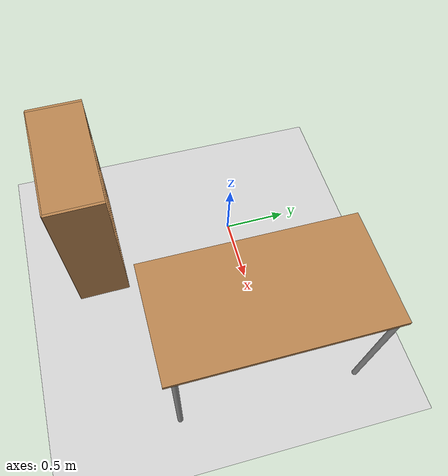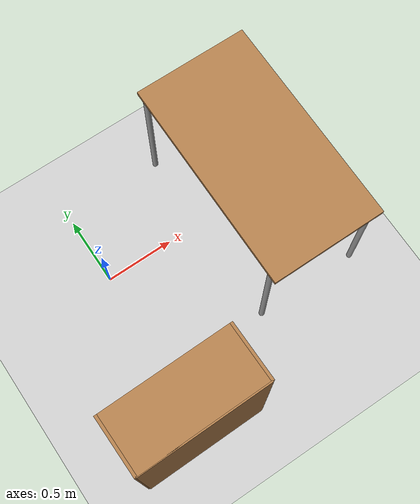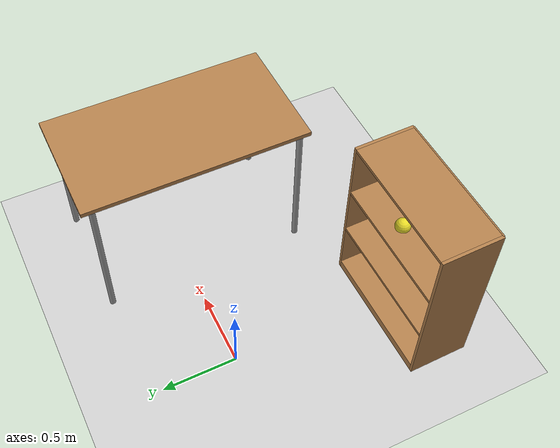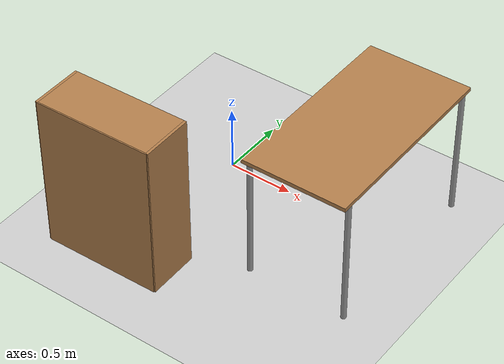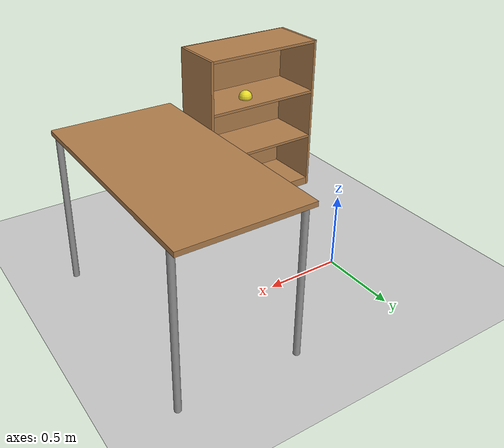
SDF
<sdf version="1.6">
 <world name="default">
  <light name="sun" type="directional">
   <pose>0 0 10 0 -0 0</pose>
   <diffuse>0.8 0.8 0.8 1</diffuse>
   <specular>0.2 0.2 0.2 1</specular>
   <attenuation>
    <range>1000</range>
    <constant>0.9</constant>
    <linear>0.01</linear>
    <quadratic>0.001</quadratic>
   </attenuation>
   <direction>-0.5 0.1 -0.9</direction>
  </light>
  <physics name="dart_1ms" default="1" type="dart">
   <max_step_size>0.001</max_step_size>
   <real_time_factor>1</real_time_factor>
   <real_time_update_rate>1000</real_time_update_rate>
  </physics>
  <physics name="dart_2ms" default="1" type="dart">
   <max_step_size>0.002</max_step_size>
   <real_time_factor>1</real_time_factor>
   <real_time_update_rate>500</real_time_update_rate>
  </physics>
  <physics name="dart_3ms" default="0" type="dart">
   <max_step_size>0.003</max_step_size>
   <real_time_factor>1</real_time_factor>
   <real_time_update_rate>333</real_time_update_rate>
  </physics>
  <model name="ground_plane">
   <static>1</static>
   <link name="link">
    <collision name="collision">
     <geometry><plane><normal>0 0 1</normal><size>100 100</size></plane></geometry>
     <surface><friction><ode><mu>100</mu><mu2>50</mu2></ode></friction></surface>
    </collision>
    <visual name="visual">
     <cast_shadows>0</cast_shadows>
     <geometry><plane><normal>0 0 1</normal><size>100 100</size></plane></geometry>
     <material>
      <script><uri>file://media/materials/scripts/gazebo.material</uri><name>Gazebo/Grey</name></script>
     </material>
    </visual>
   </link>
  </model>
  <scene><ambient>0.4 0.4 0.4 1</ambient><background>0.7 0.7 0.7 1</background><shadows>1</shadows></scene>
  <audio><device>default</device></audio>
  <spherical_coordinates>
   <surface_model>EARTH_WGS84</surface_model>
   <latitude_deg>0</latitude_deg>
   <longitude_deg>0</longitude_deg>
   <elevation>0</elevation>
   <heading_deg>0</heading_deg>
  </spherical_coordinates>
  <model name="table">
   <static>1</static>
   <link name="link">
    <collision name="surface">
     <pose>0 0 1 0 -0 0</pose>
     <geometry><box><size>1.5 0.8 0.03</size></box></geometry>
     <surface><friction><ode><mu>0.6</mu><mu2>0.6</mu2></ode></friction></surface>
    </collision>
    <visual name="visual1">
     <pose>0 0 1 0 -0 0</pose>
     <geometry><box><size>1.5 0.8 0.03</size></box></geometry>
     <material>
      <script><uri>file://media/materials/scripts/gazebo.material</uri><name>Gazebo/Wood</name></script>
     </material>
    </visual>
    <collision name="front_left_leg">
     <pose>0.68 0.38 0.5 0 -0 0</pose>
     <geometry><cylinder><radius>0.02</radius><length>1</length></cylinder></geometry>
    </collision>
    <visual name="front_left_leg">
     <pose>0.68 0.38 0.5 0 -0 0</pose>
     <geometry><cylinder><radius>0.02</radius><length>1</length></cylinder></geometry>
     <material>
      <script><uri>file://media/materials/scripts/gazebo.material</uri><name>Gazebo/Grey</name></script>
     </material>
    </visual>
    <collision name="front_right_leg">
     <pose>0.68 -0.38 0.5 0 -0 0</pose>
     <geometry><cylinder><radius>0.02</radius><length>1</length></cylinder></geometry>
    </collision>
    <visual name="front_right_leg">
     <pose>0.68 -0.38 0.5 0 -0 0</pose>
     <geometry><cylinder><radius>0.02</radius><length>1</length></cylinder></geometry>
     <material>
      <script><uri>file://media/materials/scripts/gazebo.material</uri><name>Gazebo/Grey</name></script>
     </material>
    </visual>
    <collision name="back_right_leg">
     <pose>-0.68 -0.38 0.5 0 -0 0</pose>
     <geometry><cylinder><radius>0.02</radius><length>1</length></cylinder></geometry>
    </collision>
    <visual name="back_right_leg">
     <pose>-0.68 -0.38 0.5 0 -0 0</pose>
     <geometry><cylinder><radius>0.02</radius><length>1</length></cylinder></geometry>
     <material>
      <script><uri>file://media/materials/scripts/gazebo.material</uri><name>Gazebo/Grey</name></script>
     </material>
    </visual>
    <collision name="back_left_leg">
     <pose>-0.68 0.38 0.5 0 -0 0</pose>
     <geometry><cylinder><radius>0.02</radius><length>1</length></cylinder></geometry>
    </collision>
    <visual name="back_left_leg">
     <pose>-0.68 0.38 0.5 0 -0 0</pose>
     <geometry><cylinder><radius>0.02</radius><length>1</length></cylinder></geometry>
     <material>
      <script><uri>file://media/materials/scripts/gazebo.material</uri><name>Gazebo/Grey</name></script>
     </material>
    </visual>
   </link>
   <pose>1.12467 -0.11736 0 0 -0 1.5708</pose>
  </model>
  <gravity>0 0 -9.8</gravity>
  <magnetic_field>6e-06 2.3e-05 -4.2e-05</magnetic_field>
  <atmosphere type="adiabatic"/>
  <model name="bookshelf">
   <static>1</static>
   <link name="link">
    <inertial><mass>1</mass></inertial>
    <collision name="back">
     <pose>0 0.005 0.6 0 -0 0</pose>
     <geometry><box><size>0.9 0.01 1.2</size></box></geometry>
    </collision>
    <visual name="visual1">
     <pose>0 0.005 0.6 0 -0 0</pose>
     <geometry><box><size>0.9 0.01 1.2</size></box></geometry>
     <material>
      <script><uri>file://media/materials/scripts/gazebo.material</uri><name>Gazebo/Wood</name></script>
     </material>
    </visual>
    <collision name="left_side">
     <pose>0.45 -0.195 0.6 0 -0 0</pose>
     <geometry><box><size>0.02 0.4 1.2</size></box></geometry>
    </collision>
    <visual name="visual2">
     <pose>0.45 -0.195 0.6 0 -0 0</pose>
     <geometry><box><size>0.02 0.4 1.2</size></box></geometry>
     <material>
      <script><uri>file://media/materials/scripts/gazebo.material</uri><name>Gazebo/Wood</name></script>
     </material>
    </visual>
    <collision name="right_side">
     <pose>-0.45 -0.195 0.6 0 -0 0</pose>
     <geometry><box><size>0.02 0.4 1.2</size></box></geometry>
    </collision>
    <visual name="visual3">
     <pose>-0.45 -0.195 0.6 0 -0 0</pose>
     <geometry><box><size>0.02 0.4 1.2</size></box></geometry>
     <material>
      <script><uri>file://media/materials/scripts/gazebo.material</uri><name>Gazebo/Wood</name></script>
     </material>
    </visual>
    <collision name="bottom">
     <pose>0 -0.195 0.03 0 -0 0</pose>
     <geometry><box><size>0.88 0.4 0.06</size></box></geometry>
    </collision>
    <visual name="visual4">
     <pose>0 -0.195 0.03 0 -0 0</pose>
     <geometry><box><size>0.88 0.4 0.06</size></box></geometry>
     <material>
      <script><uri>file://media/materials/scripts/gazebo.material</uri><name>Gazebo/Wood</name></script>
     </material>
    </visual>
    <collision name="top">
     <pose>0 -0.195 1.19 0 -0 0</pose>
     <geometry><box><size>0.88 0.4 0.02</size></box></geometry>
    </collision>
    <visual name="visual5">
     <pose>0 -0.195 1.19 0 -0 0</pose>
     <geometry><box><size>0.88 0.4 0.02</size></box></geometry>
     <material>
      <script><uri>file://media/materials/scripts/gazebo.material</uri><name>Gazebo/Wood</name></script>
     </material>
    </visual>
    <collision name="low_shelf">
     <pose>0 -0.195 0.43 0 -0 0</pose>
     <geometry><box><size>0.88 0.4 0.02</size></box></geometry>
    </collision>
    <visual name="visual6">
     <pose>0 -0.195 0.43 0 -0 0</pose>
     <geometry><box><size>0.88 0.4 0.02</size></box></geometry>
     <material>
      <script><uri>file://media/materials/scripts/gazebo.material</uri><name>Gazebo/Wood</name></script>
     </material>
    </visual>
    <collision name="high_shelf">
     <pose>0 -0.195 0.8 0 -0 0</pose>
     <geometry><box><size>0.88 0.4 0.02</size></box></geometry>
    </collision>
    <visual name="visual7">
     <pose>0 -0.195 0.8 0 -0 0</pose>
     <geometry><box><size>0.88 0.4 0.02</size></box></geometry>
     <material>
      <script><uri>file://media/materials/scripts/gazebo.material</uri><name>Gazebo/Wood</name></script>
     </material>
    </visual>
   </link>
   <pose>-0.093457 -1.34954 0 0 0 -3.12733</pose>
  </model>
  <model name="dummy">
   <link name="link">
    <gravity>0</gravity>
    <inertial>
     <mass>0.0122</mass>
     <inertia>
      <ixx>1.08758e-06</ixx>
      <ixy>0</ixy>
      <ixz>0</ixz>
      <iyy>1.08758e-06</iyy>
      <iyz>0</iyz>
      <izz>2.16703e-06</izz>
     </inertia>
    </inertial>
    <visual name="visual">
     <geometry><sphere><radius>0.05</radius></sphere></geometry>
     <material>
      <script><uri>file://media/materials/scripts/gazebo.material</uri><name>Gazebo/Yellow</name></script>
     </material>
    </visual>
   </link>
   <pose>-0.025936 -1.09836 0.821285 0 -0 0</pose>
  </model>
 </world>
</sdf>
